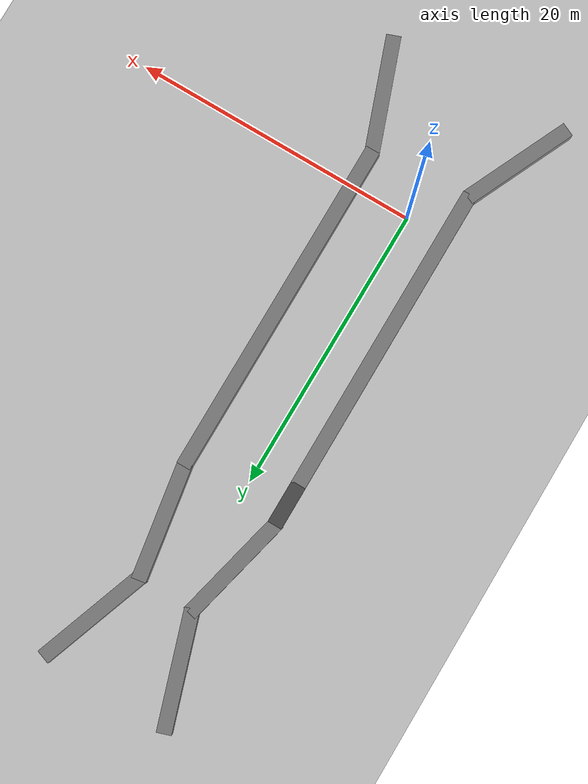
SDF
<sdf version="1.7">
 <world name="scenario_5_high_speed_constrained">
  <light name="sun" type="directional">
   <pose>0 0 10 0 -0 0</pose>
   <diffuse>0.8 0.8 0.8 1</diffuse>
   <specular>0.2 0.2 0.2 1</specular>
   <attenuation>
    <range>1000</range>
    <constant>0.9</constant>
    <linear>0.01</linear>
    <quadratic>0.001</quadratic>
   </attenuation>
   <direction>-0.5 0.1 -0.9</direction>
   <spot><inner_angle>0</inner_angle><outer_angle>0</outer_angle><falloff>0</falloff></spot>
  </light>
  <model name="ground_plane">
   <static>1</static>
   <link name="link">
    <collision name="collision">
     <geometry><plane><normal>0 0 1</normal><size>100 100</size></plane></geometry>
     <surface>
      <contact><collide_bitmask>65535</collide_bitmask></contact>
      <friction><ode><mu>100</mu><mu2>50</mu2></ode></friction>
     </surface>
    </collision>
    <visual name="visual">
     <cast_shadows>0</cast_shadows>
     <geometry><plane><normal>0 0 1</normal><size>100 100</size></plane></geometry>
     <material>
      <script><uri>file://media/materials/scripts/gazebo.material</uri><name>Gazebo/Grey</name></script>
     </material>
    </visual>
   </link>
  </model>
  <model name="left_wall_wide">
   <static>1</static>
   <pose>-4.45023 -6.66494 0.5 0 0 -0.434961</pose>
   <link name="link">
    <collision name="collision"><geometry><box><size>1 8 1</size></box></geometry></collision>
    <visual name="visual">
     <geometry><box><size>1 8 1</size></box></geometry>
     <material><ambient>0.5 0.5 0.5 1</ambient><diffuse>0.5 0.5 0.5 1</diffuse></material>
    </visual>
   </link>
  </model>
  <model name="right_wall_wide">
   <static>1</static>
   <pose>4.14186 9.37015 0.5 0 -0 0</pose>
   <link name="link">
    <collision name="collision"><geometry><box><size>1 23.9862 1</size></box></geometry></collision>
    <visual name="visual">
     <geometry><box><size>1 23.9862 1</size></box></geometry>
     <material><ambient>0.5 0.5 0.5 1</ambient><diffuse>0.5 0.5 0.5 1</diffuse></material>
    </visual>
   </link>
  </model>
  <model name="right_wall_narrow">
   <static>1</static>
   <pose>-2.80995 20.1239 0.5 0 -0 0</pose>
   <link name="link">
    <collision name="collision"><geometry><box><size>1 3 1</size></box></geometry></collision>
    <visual name="visual">
     <geometry><box><size>1 3 1</size></box></geometry>
     <material><ambient>0.3 0.3 0.3 1</ambient><diffuse>0.3 0.3 0.3 1</diffuse></material>
    </visual>
   </link>
  </model>
  <model name="turtlebot3_0"/>
  <model name="turtlebot3_1"><pose>0 1 0 0 -0 0</pose></model>
  <model name="turtlebot3_2"><pose>0 2 0 0 -0 0</pose></model>
  <model name="turtlebot3_3"><pose>0 3 0 0 -0 0</pose></model>
  <gravity>0 0 -9.8</gravity>
  <magnetic_field>6e-06 2.3e-05 -4.2e-05</magnetic_field>
  <atmosphere type="adiabatic"/>
  <physics type="ode">
   <max_step_size>0.001</max_step_size>
   <real_time_factor>1</real_time_factor>
   <real_time_update_rate>1000</real_time_update_rate>
  </physics>
  <scene><ambient>0.4 0.4 0.4 1</ambient><background>0.7 0.7 0.7 1</background><shadows>1</shadows></scene>
  <spherical_coordinates>
   <surface_model>EARTH_WGS84</surface_model>
   <latitude_deg>0</latitude_deg>
   <longitude_deg>0</longitude_deg>
   <elevation>0</elevation>
   <heading_deg>0</heading_deg>
  </spherical_coordinates>
  <model name="left_wall_wide_clone">
   <static>1</static>
   <pose>-2.80433 7.70909 0.5 0 -0 0</pose>
   <link name="link">
    <collision name="collision"><geometry><box><size>1 21.9997 1</size></box></geometry></collision>
    <visual name="visual">
     <geometry><box><size>1 21.9997 1</size></box></geometry>
     <material><ambient>0.5 0.5 0.5 1</ambient><diffuse>0.5 0.5 0.5 1</diffuse></material>
    </visual>
   </link>
  </model>
  <model name="left_wall_wide_clone_0">
   <static>1</static>
   <pose>5.4829 -6.192 0.5 0 -0 0.350027</pose>
   <link name="link">
    <collision name="collision"><geometry><box><size>1 8 1</size></box></geometry></collision>
    <visual name="visual">
     <geometry><box><size>1 8 1</size></box></geometry>
     <material><ambient>0.5 0.5 0.5 1</ambient><diffuse>0.5 0.5 0.5 1</diffuse></material>
    </visual>
   </link>
  </model>
  <model name="left_wall_wide_clone_1">
   <static>1</static>
   <pose>3.49387 25.0644 0.5 0 -0 0.162879</pose>
   <link name="link">
    <collision name="collision"><geometry><box><size>1 8 1</size></box></geometry></collision>
    <visual name="visual">
     <geometry><box><size>1 8 1</size></box></geometry>
     <material><ambient>0.5 0.5 0.5 1</ambient><diffuse>0.5 0.5 0.5 1</diffuse></material>
    </visual>
   </link>
  </model>
  <model name="left_wall_wide_clone_1_clone">
   <static>1</static>
   <pose>-1.94067 25.2526 0.5 0 0 -0.235664</pose>
   <link name="link">
    <collision name="collision"><geometry><box><size>1 8 1</size></box></geometry></collision>
    <visual name="visual">
     <geometry><box><size>1 8 1</size></box></geometry>
     <material><ambient>0.5 0.5 0.5 1</ambient><diffuse>0.5 0.5 0.5 1</diffuse></material>
    </visual>
   </link>
  </model>
  <model name="left_wall_wide_clone_1_clone_0">
   <static>1</static>
   <pose>4.18748 32.4413 0.5 0 0 -0.346111</pose>
   <link name="link">
    <collision name="collision"><geometry><box><size>1 8 1</size></box></geometry></collision>
    <visual name="visual">
     <geometry><box><size>1 8 1</size></box></geometry>
     <material><ambient>0.5 0.5 0.5 1</ambient><diffuse>0.5 0.5 0.5 1</diffuse></material>
    </visual>
   </link>
  </model>
  <model name="left_wall_wide_clone_1_clone_clone">
   <static>1</static>
   <pose>-2.25093 32.5897 0.5 0 -0 0.316777</pose>
   <link name="link">
    <collision name="collision"><geometry><box><size>1 8 1</size></box></geometry></collision>
    <visual name="visual">
     <geometry><box><size>1 8 1</size></box></geometry>
     <material><ambient>0.5 0.5 0.5 1</ambient><diffuse>0.5 0.5 0.5 1</diffuse></material>
    </visual>
   </link>
  </model>
 </world>
</sdf>
